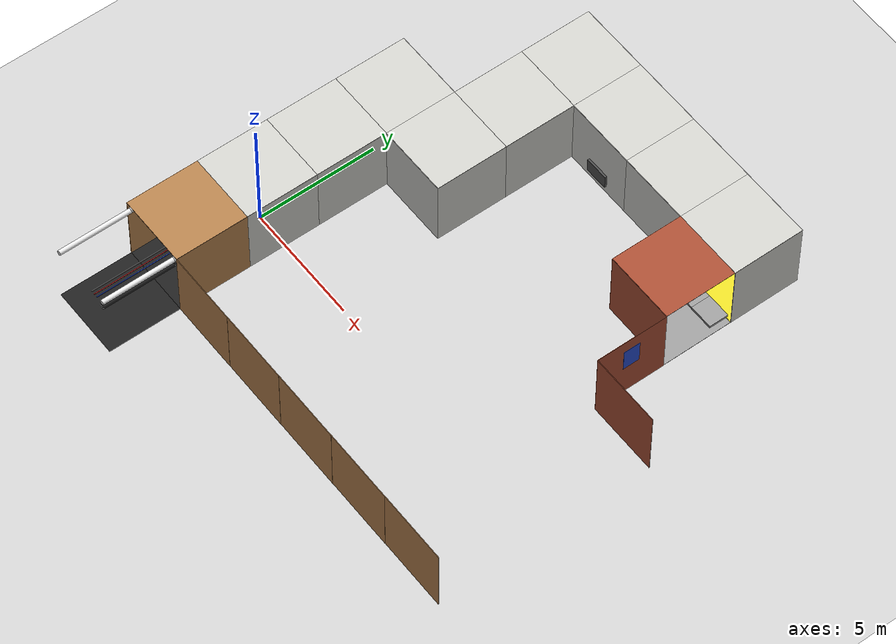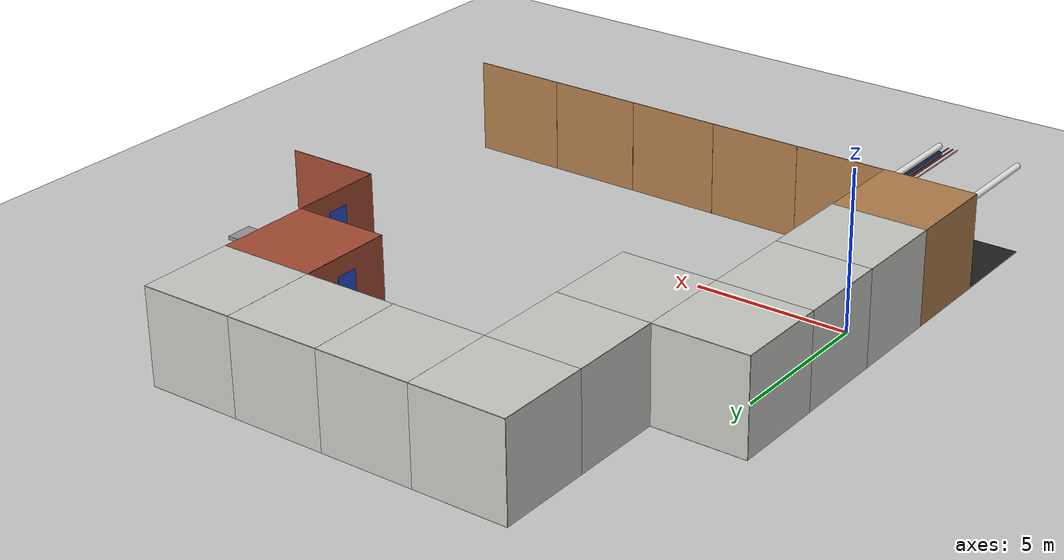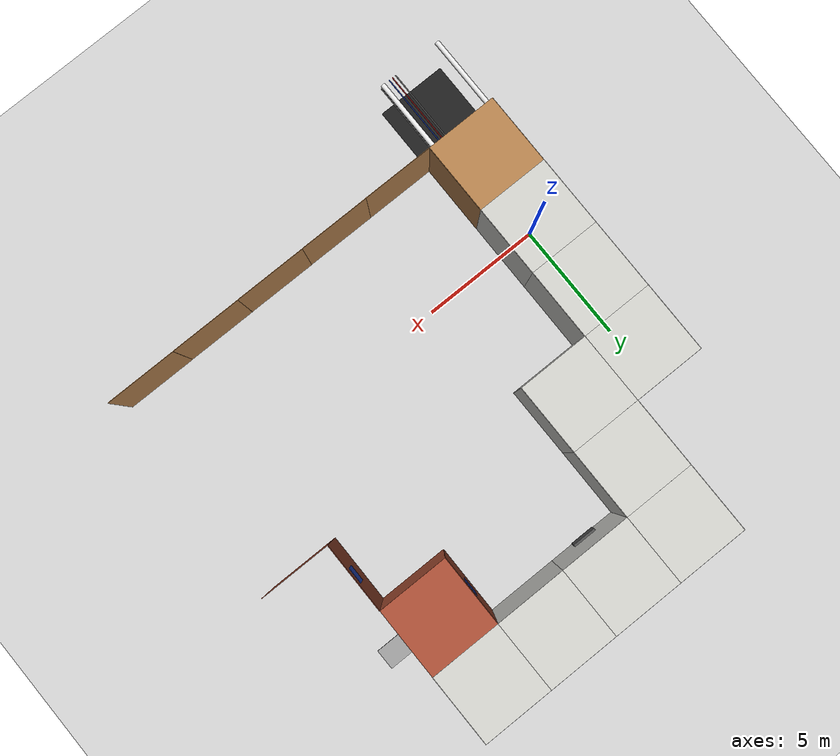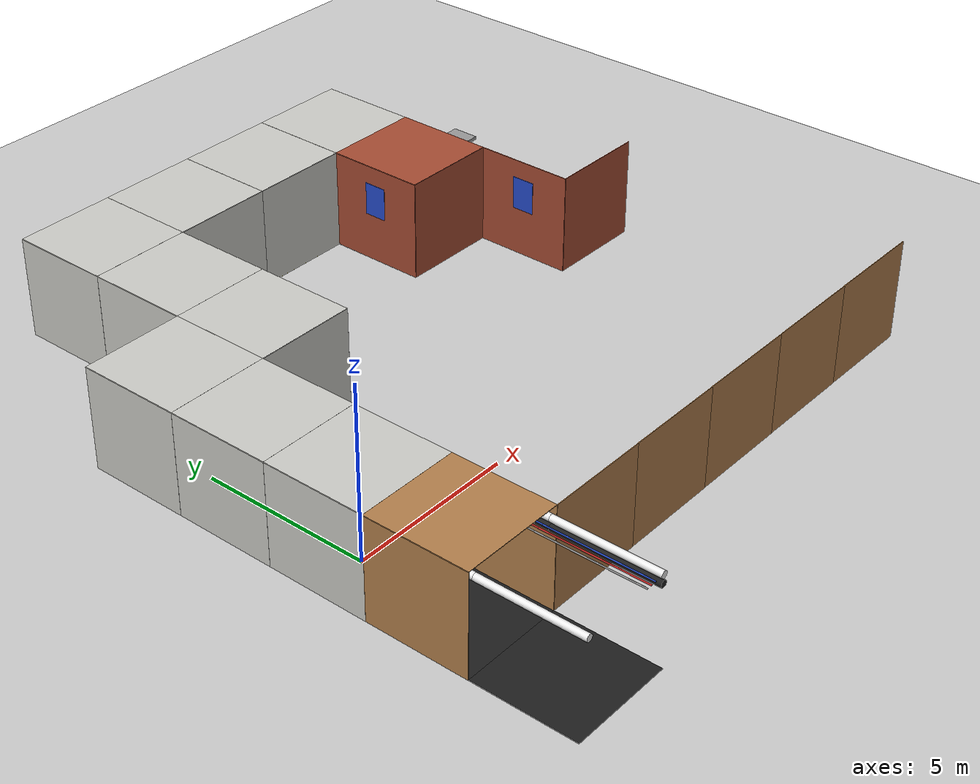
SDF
<sdf version="1.6">
 <world name="default">
  <model name="ground_plane">
   <static>1</static>
   <link name="link">
    <collision name="collision">
     <geometry><plane><normal>0 0 1</normal><size>200 200</size></plane></geometry>
     <surface><friction><ode><mu>100</mu><mu2>50</mu2></ode></friction></surface>
    </collision>
    <visual name="visual">
     <cast_shadows>0</cast_shadows>
     <geometry><plane><normal>0 0 1</normal><size>200 200</size></plane></geometry>
     <material>
      <script><uri>file://media/materials/scripts/gazebo.material</uri><name>Gazebo/Grey</name></script>
     </material>
    </visual>
   </link>
  </model>
  <model name="wall_back_0_0_0_0">
   <static>1</static>
   <pose>0.0 -1.5 1.5 0.0 0.0 0.0</pose>
   <link name="link">
    <collision name="collision"><geometry><box><size>3 0.02 3</size></box></geometry></collision>
    <visual name="visual">
     <material>
      <script><name>Gazebo/CeilingTiled</name><uri>file://media/materials/scripts/gazebo.material</uri></script>
     </material>
     <geometry><box><size>3 0.02 3</size></box></geometry>
    </visual>
   </link>
  </model>
  <model name="wall_right_0_0_0_0">
   <static>1</static>
   <pose>1.5 0.0 1.5 0.0 0.0 1.57</pose>
   <link name="link">
    <collision name="collision"><geometry><box><size>3 0.02 3</size></box></geometry></collision>
    <visual name="visual">
     <material>
      <script><name>Gazebo/CeilingTiled</name><uri>file://media/materials/scripts/gazebo.material</uri></script>
      <ambient>1 1 1 1</ambient>
     </material>
     <geometry><box><size>3 0.02 3</size></box></geometry>
    </visual>
   </link>
  </model>
  <model name="wall_left_0_0_0_0">
   <static>1</static>
   <pose>-1.5 0.0 1.5 0.0 0.0 1.57</pose>
   <link name="link">
    <collision name="collision"><geometry><box><size>3 0.02 3</size></box></geometry></collision>
    <visual name="visual">
     <material>
      <script><name>Gazebo/CeilingTiled</name><uri>file://media/materials/scripts/gazebo.material</uri></script>
      <ambient>1 1 1 1</ambient>
     </material>
     <geometry><box><size>3 0.02 3</size></box></geometry>
    </visual>
   </link>
  </model>
  <model name="wall_top_0_0_0_0">
   <static>1</static>
   <pose>0.0 0.0 3.0 1.57 0.0 0.0</pose>
   <link name="link">
    <collision name="collision"><geometry><box><size>3 0.02 3</size></box></geometry></collision>
    <visual name="visual">
     <material>
      <script><name>Gazebo/CeilingTiled</name><uri>file://media/materials/scripts/gazebo.material</uri></script>
      <ambient>1 1 1 1</ambient>
     </material>
     <geometry><box><size>3 0.02 3</size></box></geometry>
    </visual>
   </link>
  </model>
  <model name="wall_bottom_0_0_0_0">
   <static>1</static>
   <link name="link">
    <collision name="collision"><geometry><box><size>3 3 0.02</size></box></geometry></collision>
    <visual name="visual">
     <material>
      <script><name>Gazebo/Yellow</name><uri>file://media/materials/scripts/gazebo.material</uri></script>
     </material>
     <geometry><box><size>3 3 0.02</size></box></geometry>
    </visual>
   </link>
  </model>
  <model name="wall_right_0_1_0_1">
   <static>1</static>
   <pose>1.5 3.0 1.5 0.0 0.0 1.57</pose>
   <link name="link">
    <collision name="collision"><geometry><box><size>3 0.02 3</size></box></geometry></collision>
    <visual name="visual">
     <material>
      <script><name>Gazebo/CeilingTiled</name><uri>file://media/materials/scripts/gazebo.material</uri></script>
      <ambient>1 1 1 1</ambient>
     </material>
     <geometry><box><size>3 0.02 3</size></box></geometry>
    </visual>
   </link>
  </model>
  <model name="wall_left_0_1_0_1">
   <static>1</static>
   <pose>-1.5 3.0 1.5 0.0 0.0 1.57</pose>
   <link name="link">
    <collision name="collision"><geometry><box><size>3 0.02 3</size></box></geometry></collision>
    <visual name="visual">
     <material>
      <script><name>Gazebo/CeilingTiled</name><uri>file://media/materials/scripts/gazebo.material</uri></script>
      <ambient>1 1 1 1</ambient>
     </material>
     <geometry><box><size>3 0.02 3</size></box></geometry>
    </visual>
   </link>
  </model>
  <model name="wall_top_0_1_0_1">
   <static>1</static>
   <pose>0.0 3.0 3.0 1.57 0.0 0.0</pose>
   <link name="link">
    <collision name="collision"><geometry><box><size>3 0.02 3</size></box></geometry></collision>
    <visual name="visual">
     <material>
      <script><name>Gazebo/CeilingTiled</name><uri>file://media/materials/scripts/gazebo.material</uri></script>
      <ambient>1 1 1 1</ambient>
     </material>
     <geometry><box><size>3 0.02 3</size></box></geometry>
    </visual>
   </link>
  </model>
  <model name="wall_bottom_0_1_0_1">
   <static>1</static>
   <pose>0.0 3.0 0.0 0.0 0.0 0.0</pose>
   <link name="link">
    <collision name="collision"><geometry><box><size>3 3 0.02</size></box></geometry></collision>
    <visual name="visual">
     <material>
      <script><name>Gazebo/Yellow</name><uri>file://media/materials/scripts/gazebo.material</uri></script>
     </material>
     <geometry><box><size>3 3 0.02</size></box></geometry>
    </visual>
   </link>
  </model>
  <model name="wall_front_0_2_0_2">
   <static>1</static>
   <pose>0.0 7.5 1.5 0.0 0.0 0.0</pose>
   <link name="link">
    <collision name="collision"><geometry><box><size>3 0.02 3</size></box></geometry></collision>
    <visual name="visual">
     <material>
      <script><name>Gazebo/CeilingTiled</name><uri>file://media/materials/scripts/gazebo.material</uri></script>
      <ambient>1 1 1 1</ambient>
     </material>
     <geometry><box><size>3 0.02 3</size></box></geometry>
    </visual>
   </link>
  </model>
  <model name="wall_left_0_2_0_2">
   <static>1</static>
   <pose>-1.5 6.0 1.5 0.0 0.0 1.57</pose>
   <link name="link">
    <collision name="collision"><geometry><box><size>3 0.02 3</size></box></geometry></collision>
    <visual name="visual">
     <material>
      <script><name>Gazebo/CeilingTiled</name><uri>file://media/materials/scripts/gazebo.material</uri></script>
      <ambient>1 1 1 1</ambient>
     </material>
     <geometry><box><size>3 0.02 3</size></box></geometry>
    </visual>
   </link>
  </model>
  <model name="wall_top_0_2_0_2">
   <static>1</static>
   <pose>0.0 6.0 3.0 1.57 0.0 0.0</pose>
   <link name="link">
    <collision name="collision"><geometry><box><size>3 0.02 3</size></box></geometry></collision>
    <visual name="visual">
     <material>
      <script><name>Gazebo/CeilingTiled</name><uri>file://media/materials/scripts/gazebo.material</uri></script>
      <ambient>1 1 1 1</ambient>
     </material>
     <geometry><box><size>3 0.02 3</size></box></geometry>
    </visual>
   </link>
  </model>
  <model name="wall_bottom_0_2_0_2">
   <static>1</static>
   <pose>0.0 6.0 0.0 0.0 0.0 0.0</pose>
   <link name="link">
    <collision name="collision"><geometry><box><size>3 3 0.02</size></box></geometry></collision>
    <visual name="visual">
     <material>
      <script><name>Gazebo/Yellow</name><uri>file://media/materials/scripts/gazebo.material</uri></script>
     </material>
     <geometry><box><size>3 3 0.02</size></box></geometry>
    </visual>
   </link>
  </model>
  <model name="wall_front_1_2_0_3">
   <static>1</static>
   <pose>4.5 6.0 1.5 0.0 0.0 -1.57</pose>
   <link name="link">
    <collision name="collision"><geometry><box><size>3 0.02 3</size></box></geometry></collision>
    <visual name="visual">
     <material>
      <script><name>Gazebo/CeilingTiled</name><uri>file://media/materials/scripts/gazebo.material</uri></script>
      <ambient>1 1 1 1</ambient>
     </material>
     <geometry><box><size>3 0.02 3</size></box></geometry>
    </visual>
   </link>
  </model>
  <model name="wall_right_1_2_0_3">
   <static>1</static>
   <pose>3.0 4.5 1.5 0.0 0.0 0.0</pose>
   <link name="link">
    <collision name="collision"><geometry><box><size>3 0.02 3</size></box></geometry></collision>
    <visual name="visual">
     <material>
      <script><name>Gazebo/CeilingTiled</name><uri>file://media/materials/scripts/gazebo.material</uri></script>
      <ambient>1 1 1 1</ambient>
     </material>
     <geometry><box><size>3 0.02 3</size></box></geometry>
    </visual>
   </link>
  </model>
  <model name="wall_top_1_2_0_3">
   <static>1</static>
   <pose>3.0 6.0 3.0 1.57 0.0 -1.57</pose>
   <link name="link">
    <collision name="collision"><geometry><box><size>3 0.02 3</size></box></geometry></collision>
    <visual name="visual">
     <material>
      <script><name>Gazebo/CeilingTiled</name><uri>file://media/materials/scripts/gazebo.material</uri></script>
      <ambient>1 1 1 1</ambient>
     </material>
     <geometry><box><size>3 0.02 3</size></box></geometry>
    </visual>
   </link>
  </model>
  <model name="wall_bottom_1_2_0_3">
   <static>1</static>
   <pose>3.0 6.0 0.0 0.0 0.0 -1.57</pose>
   <link name="link">
    <collision name="collision"><geometry><box><size>3 3 0.02</size></box></geometry></collision>
    <visual name="visual">
     <material>
      <script><name>Gazebo/Yellow</name><uri>file://media/materials/scripts/gazebo.material</uri></script>
     </material>
     <geometry><box><size>3 3 0.02</size></box></geometry>
    </visual>
   </link>
  </model>
  <model name="wall_right_1_3_0_1">
   <static>1</static>
   <pose>4.5 9.0 1.5 0.0 0.0 1.57</pose>
   <link name="link">
    <collision name="collision"><geometry><box><size>3 0.02 3</size></box></geometry></collision>
    <visual name="visual">
     <material>
      <script><name>Gazebo/CeilingTiled</name><uri>file://media/materials/scripts/gazebo.material</uri></script>
      <ambient>1 1 1 1</ambient>
     </material>
     <geometry><box><size>3 0.02 3</size></box></geometry>
    </visual>
   </link>
  </model>
  <model name="wall_left_1_3_0_1">
   <static>1</static>
   <pose>1.5 9.0 1.5 0.0 0.0 1.57</pose>
   <link name="link">
    <collision name="collision"><geometry><box><size>3 0.02 3</size></box></geometry></collision>
    <visual name="visual">
     <material>
      <script><name>Gazebo/CeilingTiled</name><uri>file://media/materials/scripts/gazebo.material</uri></script>
      <ambient>1 1 1 1</ambient>
     </material>
     <geometry><box><size>3 0.02 3</size></box></geometry>
    </visual>
   </link>
  </model>
  <model name="wall_top_1_3_0_1">
   <static>1</static>
   <pose>3.0 9.0 3.0 1.57 0.0 0.0</pose>
   <link name="link">
    <collision name="collision"><geometry><box><size>3 0.02 3</size></box></geometry></collision>
    <visual name="visual">
     <material>
      <script><name>Gazebo/CeilingTiled</name><uri>file://media/materials/scripts/gazebo.material</uri></script>
      <ambient>1 1 1 1</ambient>
     </material>
     <geometry><box><size>3 0.02 3</size></box></geometry>
    </visual>
   </link>
  </model>
  <model name="wall_bottom_1_3_0_1">
   <static>1</static>
   <pose>3.0 9.0 0.0 0.0 0.0 0.0</pose>
   <link name="link">
    <collision name="collision"><geometry><box><size>3 3 0.02</size></box></geometry></collision>
    <visual name="visual">
     <material>
      <script><name>Gazebo/Yellow</name><uri>file://media/materials/scripts/gazebo.material</uri></script>
     </material>
     <geometry><box><size>3 3 0.02</size></box></geometry>
    </visual>
   </link>
  </model>
  <model name="wall_front_1_4_0_2">
   <static>1</static>
   <pose>3.0 13.5 1.5 0.0 0.0 0.0</pose>
   <link name="link">
    <collision name="collision"><geometry><box><size>3 0.02 3</size></box></geometry></collision>
    <visual name="visual">
     <material>
      <script><name>Gazebo/CeilingTiled</name><uri>file://media/materials/scripts/gazebo.material</uri></script>
      <ambient>1 1 1 1</ambient>
     </material>
     <geometry><box><size>3 0.02 3</size></box></geometry>
    </visual>
   </link>
  </model>
  <model name="wall_left_1_4_0_2">
   <static>1</static>
   <pose>1.5 12.0 1.5 0.0 0.0 1.57</pose>
   <link name="link">
    <collision name="collision"><geometry><box><size>3 0.02 3</size></box></geometry></collision>
    <visual name="visual">
     <material>
      <script><name>Gazebo/CeilingTiled</name><uri>file://media/materials/scripts/gazebo.material</uri></script>
      <ambient>1 1 1 1</ambient>
     </material>
     <geometry><box><size>3 0.02 3</size></box></geometry>
    </visual>
   </link>
  </model>
  <model name="wall_top_1_4_0_2">
   <static>1</static>
   <pose>3.0 12.0 3.0 1.57 0.0 0.0</pose>
   <link name="link">
    <collision name="collision"><geometry><box><size>3 0.02 3</size></box></geometry></collision>
    <visual name="visual">
     <material>
      <script><name>Gazebo/CeilingTiled</name><uri>file://media/materials/scripts/gazebo.material</uri></script>
      <ambient>1 1 1 1</ambient>
     </material>
     <geometry><box><size>3 0.02 3</size></box></geometry>
    </visual>
   </link>
  </model>
  <model name="wall_bottom_1_4_0_2">
   <static>1</static>
   <pose>3.0 12.0 0.0 0.0 0.0 0.0</pose>
   <link name="link">
    <collision name="collision"><geometry><box><size>3 3 0.02</size></box></geometry></collision>
    <visual name="visual">
     <material>
      <script><name>Gazebo/Yellow</name><uri>file://media/materials/scripts/gazebo.material</uri></script>
     </material>
     <geometry><box><size>3 3 0.02</size></box></geometry>
    </visual>
   </link>
  </model>
  <model name="wall_right_2_4_0_1">
   <static>1</static>
   <pose>6.0 10.5 1.5 0.0 0.0 0.0</pose>
   <link name="link">
    <collision name="collision"><geometry><box><size>3 0.02 3</size></box></geometry></collision>
    <visual name="visual">
     <material>
      <script><name>Gazebo/CeilingTiled</name><uri>file://media/materials/scripts/gazebo.material</uri></script>
      <ambient>1 1 1 1</ambient>
     </material>
     <geometry><box><size>3 0.02 3</size></box></geometry>
    </visual>
   </link>
  </model>
  <model name="wall_left_2_4_0_1">
   <static>1</static>
   <pose>6.0 13.5 1.5 0.0 0.0 0.0</pose>
   <link name="link">
    <collision name="collision"><geometry><box><size>3 0.02 3</size></box></geometry></collision>
    <visual name="visual">
     <material>
      <script><name>Gazebo/CeilingTiled</name><uri>file://media/materials/scripts/gazebo.material</uri></script>
      <ambient>1 1 1 1</ambient>
     </material>
     <geometry><box><size>3 0.02 3</size></box></geometry>
    </visual>
   </link>
  </model>
  <model name="wall_top_2_4_0_1">
   <static>1</static>
   <pose>6.0 12.0 3.0 1.57 0.0 -1.57</pose>
   <link name="link">
    <collision name="collision"><geometry><box><size>3 0.02 3</size></box></geometry></collision>
    <visual name="visual">
     <material>
      <script><name>Gazebo/CeilingTiled</name><uri>file://media/materials/scripts/gazebo.material</uri></script>
      <ambient>1 1 1 1</ambient>
     </material>
     <geometry><box><size>3 0.02 3</size></box></geometry>
    </visual>
   </link>
  </model>
  <model name="wall_bottom_2_4_0_1">
   <static>1</static>
   <pose>6.0 12.0 0.0 0.0 0.0 -1.57</pose>
   <link name="link">
    <collision name="collision"><geometry><box><size>3 3 0.02</size></box></geometry></collision>
    <visual name="visual">
     <material>
      <script><name>Gazebo/Yellow</name><uri>file://media/materials/scripts/gazebo.material</uri></script>
     </material>
     <geometry><box><size>3 3 0.02</size></box></geometry>
    </visual>
   </link>
  </model>
  <model name="panel_2_4_0_1">
   <static>1</static>
   <pose>6.0 10.5 0.66 0.0 0.0 -1.57</pose>
   <link name="link">
    <collision name="collision"><geometry><box><size>0.2 1 0.6</size></box></geometry></collision>
    <visual name="visual">
     <material>
      <script><name>Gazebo/DarkGrey</name><uri>file://media/materials/scripts/gazebo.material</uri></script>
     </material>
     <geometry><box><size>0.2 1 0.6</size></box></geometry>
    </visual>
   </link>
  </model>
  <model name="wall_right_3_4_0_1">
   <static>1</static>
   <pose>9.0 10.5 1.5 0.0 0.0 0.0</pose>
   <link name="link">
    <collision name="collision"><geometry><box><size>3 0.02 3</size></box></geometry></collision>
    <visual name="visual">
     <material>
      <script><name>Gazebo/CeilingTiled</name><uri>file://media/materials/scripts/gazebo.material</uri></script>
      <ambient>1 1 1 1</ambient>
     </material>
     <geometry><box><size>3 0.02 3</size></box></geometry>
    </visual>
   </link>
  </model>
  <model name="wall_left_3_4_0_1">
   <static>1</static>
   <pose>9.0 13.5 1.5 0.0 0.0 0.0</pose>
   <link name="link">
    <collision name="collision"><geometry><box><size>3 0.02 3</size></box></geometry></collision>
    <visual name="visual">
     <material>
      <script><name>Gazebo/CeilingTiled</name><uri>file://media/materials/scripts/gazebo.material</uri></script>
      <ambient>1 1 1 1</ambient>
     </material>
     <geometry><box><size>3 0.02 3</size></box></geometry>
    </visual>
   </link>
  </model>
  <model name="wall_top_3_4_0_1">
   <static>1</static>
   <pose>9.0 12.0 3.0 1.57 0.0 -1.57</pose>
   <link name="link">
    <collision name="collision"><geometry><box><size>3 0.02 3</size></box></geometry></collision>
    <visual name="visual">
     <material>
      <script><name>Gazebo/CeilingTiled</name><uri>file://media/materials/scripts/gazebo.material</uri></script>
      <ambient>1 1 1 1</ambient>
     </material>
     <geometry><box><size>3 0.02 3</size></box></geometry>
    </visual>
   </link>
  </model>
  <model name="wall_bottom_3_4_0_1">
   <static>1</static>
   <pose>9.0 12.0 0.0 0.0 0.0 -1.57</pose>
   <link name="link">
    <collision name="collision"><geometry><box><size>3 3 0.02</size></box></geometry></collision>
    <visual name="visual">
     <material>
      <script><name>Gazebo/Yellow</name><uri>file://media/materials/scripts/gazebo.material</uri></script>
     </material>
     <geometry><box><size>3 3 0.02</size></box></geometry>
    </visual>
   </link>
  </model>
  <model name="wall_front_4_4_0_2">
   <static>1</static>
   <pose>13.5 12.0 1.5 0.0 0.0 -1.57</pose>
   <link name="link">
    <collision name="collision"><geometry><box><size>3 0.02 3</size></box></geometry></collision>
    <visual name="visual">
     <material>
      <script><name>Gazebo/CeilingTiled</name><uri>file://media/materials/scripts/gazebo.material</uri></script>
      <ambient>1 1 1 1</ambient>
     </material>
     <geometry><box><size>3 0.02 3</size></box></geometry>
    </visual>
   </link>
  </model>
  <model name="wall_left_4_4_0_2">
   <static>1</static>
   <pose>12.0 13.5 1.5 0.0 0.0 0.0</pose>
   <link name="link">
    <collision name="collision"><geometry><box><size>3 0.02 3</size></box></geometry></collision>
    <visual name="visual">
     <material>
      <script><name>Gazebo/CeilingTiled</name><uri>file://media/materials/scripts/gazebo.material</uri></script>
      <ambient>1 1 1 1</ambient>
     </material>
     <geometry><box><size>3 0.02 3</size></box></geometry>
    </visual>
   </link>
  </model>
  <model name="wall_top_4_4_0_2">
   <static>1</static>
   <pose>12.0 12.0 3.0 1.57 0.0 -1.57</pose>
   <link name="link">
    <collision name="collision"><geometry><box><size>3 0.02 3</size></box></geometry></collision>
    <visual name="visual">
     <material>
      <script><name>Gazebo/CeilingTiled</name><uri>file://media/materials/scripts/gazebo.material</uri></script>
      <ambient>1 1 1 1</ambient>
     </material>
     <geometry><box><size>3 0.02 3</size></box></geometry>
    </visual>
   </link>
  </model>
  <model name="wall_bottom_4_4_0_2">
   <static>1</static>
   <pose>12.0 12.0 0.0 0.0 0.0 -1.57</pose>
   <link name="link">
    <collision name="collision"><geometry><box><size>3 3 0.02</size></box></geometry></collision>
    <visual name="visual">
     <material>
      <script><name>Gazebo/Yellow</name><uri>file://media/materials/scripts/gazebo.material</uri></script>
     </material>
     <geometry><box><size>3 3 0.02</size></box></geometry>
    </visual>
   </link>
  </model>
  <model name="wall_front_4_3_0_3">
   <static>1</static>
   <pose>12.0 7.5 1.5 0.0 0.0 3.14</pose>
   <link name="link">
    <collision name="collision"><geometry><box><size>3 0.02 3</size></box></geometry></collision>
    <visual name="visual">
     <material>
      <script><name>Gazebo/Bricks</name><uri>file://media/materials/scripts/gazebo.material</uri></script>
     </material>
     <geometry><box><size>3 0.02 3</size></box></geometry>
    </visual>
   </link>
  </model>
  <model name="wall_right_4_3_0_3">
   <static>1</static>
   <pose>10.5 9.0 1.5 0.0 0.0 4.71</pose>
   <link name="link">
    <collision name="collision"><geometry><box><size>3 0.02 3</size></box></geometry></collision>
    <visual name="visual">
     <material>
      <script><name>Gazebo/Bricks</name><uri>file://media/materials/scripts/gazebo.material</uri></script>
     </material>
     <geometry><box><size>3 0.02 3</size></box></geometry>
    </visual>
   </link>
  </model>
  <model name="wall_top_4_3_0_3">
   <static>1</static>
   <pose>12.0 9.0 3.0 1.57 0.0 3.14</pose>
   <link name="link">
    <collision name="collision"><geometry><box><size>3 0.02 3</size></box></geometry></collision>
    <visual name="visual">
     <material>
      <script><name>Gazebo/Bricks</name><uri>file://media/materials/scripts/gazebo.material</uri></script>
     </material>
     <geometry><box><size>3 0.02 3</size></box></geometry>
    </visual>
   </link>
  </model>
  <model name="ceiling_1_4_3_0_3">
   <pose>12.0 10.0 2.55 0.0 0.0 3.14</pose>
   <link name="link_1">
    <visual name="visual">
     <geometry><box><size>0.8 1 0.1</size></box></geometry>
     <material>
      <script><uri>file://media/materials/scripts/gazebo.material</uri><name>Gazebo/Grey</name></script>
     </material>
    </visual>
    <collision name="collision"><geometry><box><size>0.8 1 0.1</size></box></geometry></collision>
   </link>
   <static>1</static>
  </model>
  <model name="ceiling_1_4_3_1_3">
   <pose>13.0 9.0 2.55 0.0 0.0 4.71</pose>
   <link name="link_1">
    <visual name="visual">
     <geometry><box><size>0.8 1 0.1</size></box></geometry>
     <material>
      <script><uri>file://media/materials/scripts/gazebo.material</uri><name>Gazebo/Grey</name></script>
     </material>
    </visual>
    <collision name="collision"><geometry><box><size>0.8 1 0.1</size></box></geometry></collision>
   </link>
   <static>1</static>
  </model>
  <model name="wall_bottom_4_3_0_3">
   <static>1</static>
   <pose>12.0 9.0 0.0 0.0 0.0 3.14</pose>
   <link name="link">
    <collision name="collision"><geometry><box><size>3 3 0.02</size></box></geometry></collision>
    <visual name="visual">
     <material>
      <script><name>Gazebo/Grey</name><uri>file://media/materials/scripts/gazebo.material</uri></script>
     </material>
     <geometry><box><size>3 3 0.02</size></box></geometry>
    </visual>
   </link>
  </model>
  <model name="panel_4_3_0_3">
   <static>1</static>
   <pose>10.5 9.0 1.95 0.0 0.0 3.14</pose>
   <link name="link">
    <collision name="collision"><geometry><box><size>0.04 0.7 1</size></box></geometry></collision>
    <visual name="visual">
     <material>
      <script><name>Gazebo/Blue</name><uri>file://media/materials/scripts/gazebo.material</uri></script>
     </material>
     <geometry><box><size>0.04 0.7 1</size></box></geometry>
    </visual>
   </link>
  </model>
  <model name="ceiling_1_5_3_0_2">
   <pose>14.0 9.0 2.55 0.0 0.0 -1.57</pose>
   <link name="link_1">
    <visual name="visual">
     <geometry><box><size>0.8 1 0.1</size></box></geometry>
     <material>
      <script><uri>file://media/materials/scripts/gazebo.material</uri><name>Gazebo/Grey</name></script>
     </material>
    </visual>
    <collision name="collision"><geometry><box><size>0.8 1 0.1</size></box></geometry></collision>
   </link>
   <static>1</static>
  </model>
  <model name="wall_front_5_2_0_3">
   <static>1</static>
   <pose>15.0 4.5 1.5 0.0 0.0 3.14</pose>
   <link name="link">
    <collision name="collision"><geometry><box><size>3 0.02 3</size></box></geometry></collision>
    <visual name="visual">
     <material>
      <script><name>Gazebo/Bricks</name><uri>file://media/materials/scripts/gazebo.material</uri></script>
     </material>
     <geometry><box><size>3 0.02 3</size></box></geometry>
    </visual>
   </link>
  </model>
  <model name="wall_right_5_2_0_3">
   <static>1</static>
   <pose>13.5 6.0 1.5 0.0 0.0 4.71</pose>
   <link name="link">
    <collision name="collision"><geometry><box><size>3 0.02 3</size></box></geometry></collision>
    <visual name="visual">
     <material>
      <script><name>Gazebo/Bricks</name><uri>file://media/materials/scripts/gazebo.material</uri></script>
     </material>
     <geometry><box><size>3 0.02 3</size></box></geometry>
    </visual>
   </link>
  </model>
  <model name="panel_5_2_0_3">
   <static>1</static>
   <pose>13.5 6.0 1.95 0.0 0.0 3.14</pose>
   <link name="link">
    <collision name="collision"><geometry><box><size>0.04 0.7 1</size></box></geometry></collision>
    <visual name="visual">
     <material>
      <script><name>Gazebo/Blue</name><uri>file://media/materials/scripts/gazebo.material</uri></script>
     </material>
     <geometry><box><size>0.04 0.7 1</size></box></geometry>
    </visual>
   </link>
  </model>
  <model name="wall_right_5_-2_0_1">
   <static>1</static>
   <pose>15.0 -4.5 1.5 0.0 0.0 3.14</pose>
   <link name="link">
    <collision name="collision"><geometry><box><size>3 0.02 3</size></box></geometry></collision>
    <visual name="visual">
     <material>
      <script><name>Gazebo/Wood</name><uri>file://media/materials/scripts/gazebo.material</uri></script>
     </material>
     <geometry><box><size>3 0.02 3</size></box></geometry>
    </visual>
   </link>
  </model>
  <model name="wall_right_4_-2_0_1">
   <static>1</static>
   <pose>12.0 -4.5 1.5 0.0 0.0 3.14</pose>
   <link name="link">
    <collision name="collision"><geometry><box><size>3 0.02 3</size></box></geometry></collision>
    <visual name="visual">
     <material>
      <script><name>Gazebo/Wood</name><uri>file://media/materials/scripts/gazebo.material</uri></script>
     </material>
     <geometry><box><size>3 0.02 3</size></box></geometry>
    </visual>
   </link>
  </model>
  <model name="wall_right_3_-2_0_1">
   <static>1</static>
   <pose>9.0 -4.5 1.5 0.0 0.0 3.14</pose>
   <link name="link">
    <collision name="collision"><geometry><box><size>3 0.02 3</size></box></geometry></collision>
    <visual name="visual">
     <material>
      <script><name>Gazebo/Wood</name><uri>file://media/materials/scripts/gazebo.material</uri></script>
     </material>
     <geometry><box><size>3 0.02 3</size></box></geometry>
    </visual>
   </link>
  </model>
  <model name="wall_right_2_-2_0_1">
   <static>1</static>
   <pose>6.0 -4.5 1.5 0.0 0.0 3.14</pose>
   <link name="link">
    <collision name="collision"><geometry><box><size>3 0.02 3</size></box></geometry></collision>
    <visual name="visual">
     <material>
      <script><name>Gazebo/Wood</name><uri>file://media/materials/scripts/gazebo.material</uri></script>
     </material>
     <geometry><box><size>3 0.02 3</size></box></geometry>
    </visual>
   </link>
  </model>
  <model name="wall_right_1_-2_0_3">
   <static>1</static>
   <pose>3.0 -4.5 1.5 0.0 0.0 3.14</pose>
   <link name="link">
    <collision name="collision"><geometry><box><size>3 0.02 3</size></box></geometry></collision>
    <visual name="visual">
     <material>
      <script><name>Gazebo/Wood</name><uri>file://media/materials/scripts/gazebo.material</uri></script>
     </material>
     <geometry><box><size>3 0.02 3</size></box></geometry>
    </visual>
   </link>
  </model>
  <model name="white_pipe_left_0_-2_0_1">
   <static>1</static>
   <pose>0.0 -6.0 2.76 0.0 0.0 0.0</pose>
   <link name="link_0">
    <visual name="visual">
     <pose>-1.3 0 0 1.57 0 0</pose>
     <geometry><cylinder><radius>0.1</radius><length>3</length></cylinder></geometry>
     <material>
      <script><uri>file://media/materials/scripts/gazebo.material</uri><name>Gazebo/White</name></script>
     </material>
    </visual>
    <collision name="collision">
     <pose>-1.3 0 0 1.57 0 0</pose>
     <geometry><cylinder><radius>0.1</radius><length>3</length></cylinder></geometry>
    </collision>
   </link>
  </model>
  <model name="white_pipe_right_0_-2_0_1">
   <static>1</static>
   <pose>0.0 -6.0 2.76 0.0 0.0 0.0</pose>
   <link name="link_0">
    <visual name="visual">
     <pose>1.3 0 0 1.57 0 0</pose>
     <geometry><cylinder><radius>0.1</radius><length>3</length></cylinder></geometry>
     <material>
      <script><uri>file://media/materials/scripts/gazebo.material</uri><name>Gazebo/White</name></script>
     </material>
    </visual>
    <collision name="collision">
     <pose>1.3 0 0 1.57 0 0</pose>
     <geometry><cylinder><radius>0.1</radius><length>3</length></cylinder></geometry>
    </collision>
   </link>
  </model>
  <model name="black_pipe_right_0_-2_0_1">
   <static>1</static>
   <pose>0.0 -6.0 2.76 0.0 0.0 0.0</pose>
   <link name="link_0">
    <visual name="visual">
     <pose>1.3 0 -0.25 1.57 0 0</pose>
     <geometry><cylinder><radius>0.1</radius><length>3</length></cylinder></geometry>
     <material>
      <script><uri>file://media/materials/scripts/gazebo.material</uri><name>Gazebo/Black</name></script>
     </material>
    </visual>
    <collision name="collision">
     <pose>1.3 0 -0.25 1.57 0 0</pose>
     <geometry><cylinder><radius>0.1</radius><length>3</length></cylinder></geometry>
    </collision>
   </link>
  </model>
  <model name="grey_pipe_right_0_-2_0_1">
   <static>1</static>
   <pose>0.0 -6.0 2.76 0.0 0.0 0.0</pose>
   <link name="link_0">
    <visual name="visual">
     <pose>0.7 0 0 1.57 0 0</pose>
     <geometry><cylinder><radius>0.02</radius><length>3</length></cylinder></geometry>
     <material>
      <script><uri>file://media/materials/scripts/gazebo.material</uri><name>Gazebo/Grey</name></script>
     </material>
    </visual>
    <collision name="collision">
     <pose>0.7 0 0 1.57 0 0</pose>
     <geometry><cylinder><radius>0.02</radius><length>3</length></cylinder></geometry>
    </collision>
   </link>
  </model>
  <model name="red_pipe_right_0_-2_0_1">
   <static>1</static>
   <pose>0.0 -6.0 2.76 0.0 0.0 0.0</pose>
   <link name="link_0">
    <visual name="visual">
     <pose>0.85 0 0 1.57 0 0</pose>
     <geometry><cylinder><radius>0.02</radius><length>3</length></cylinder></geometry>
     <material>
      <script><uri>file://media/materials/scripts/gazebo.material</uri><name>Gazebo/Red</name></script>
     </material>
    </visual>
    <collision name="collision">
     <pose>0.85 0 0 1.57 0 0</pose>
     <geometry><cylinder><radius>0.02</radius><length>3</length></cylinder></geometry>
    </collision>
   </link>
  </model>
  <model name="blue_pipe_right_0_-2_0_1">
   <static>1</static>
   <pose>0.0 -6.0 2.76 0.0 0.0 0.0</pose>
   <link name="link_0">
    <visual name="visual">
     <pose>1 0 0 1.57 0 0</pose>
     <geometry><cylinder><radius>0.02</radius><length>3</length></cylinder></geometry>
     <material>
      <script><uri>file://media/materials/scripts/gazebo.material</uri><name>Gazebo/Blue</name></script>
     </material>
    </visual>
    <collision name="collision">
     <pose>1 0 0 1.57 0 0</pose>
     <geometry><cylinder><radius>0.02</radius><length>3</length></cylinder></geometry>
    </collision>
   </link>
  </model>
  <model name="wall_bottom_0_-2_0_1">
   <static>1</static>
   <pose>0.0 -6.0 0.0 0.0 0.0 0.0</pose>
   <link name="link">
    <collision name="collision"><geometry><box><size>3 3 0.02</size></box></geometry></collision>
    <visual name="visual">
     <material>
      <script><name>Gazebo/Black</name><uri>file://media/materials/scripts/gazebo.material</uri></script>
     </material>
     <geometry><box><size>3 3 0.02</size></box></geometry>
    </visual>
   </link>
  </model>
  <model name="wall_right_0_-1_0_1">
   <static>1</static>
   <pose>1.5 -3.0 1.5 0.0 0.0 1.57</pose>
   <link name="link">
    <collision name="collision"><geometry><box><size>3 0.02 3</size></box></geometry></collision>
    <visual name="visual">
     <material>
      <script><name>Gazebo/Wood</name><uri>file://media/materials/scripts/gazebo.material</uri></script>
     </material>
     <geometry><box><size>3 0.02 3</size></box></geometry>
    </visual>
   </link>
  </model>
  <model name="wall_left_0_-1_0_1">
   <static>1</static>
   <pose>-1.5 -3.0 1.5 0.0 0.0 1.57</pose>
   <link name="link">
    <collision name="collision"><geometry><box><size>3 0.02 3</size></box></geometry></collision>
    <visual name="visual">
     <material>
      <script><name>Gazebo/Wood</name><uri>file://media/materials/scripts/gazebo.material</uri></script>
     </material>
     <geometry><box><size>3 0.02 3</size></box></geometry>
    </visual>
   </link>
  </model>
  <model name="wall_top_0_-1_0_1">
   <static>1</static>
   <pose>0.0 -3.0 3.0 1.57 0.0 0.0</pose>
   <link name="link">
    <collision name="collision"><geometry><box><size>3 0.02 3</size></box></geometry></collision>
    <visual name="visual">
     <material>
      <script><name>Gazebo/Wood</name><uri>file://media/materials/scripts/gazebo.material</uri></script>
     </material>
     <geometry><box><size>3 0.02 3</size></box></geometry>
    </visual>
   </link>
  </model>
  <model name="white_pipe_left_0_-1_0_1">
   <static>1</static>
   <pose>0.0 -3.0 2.76 0.0 0.0 0.0</pose>
   <link name="link_0">
    <visual name="visual">
     <pose>-1.3 0 0 1.57 0 0</pose>
     <geometry><cylinder><radius>0.1</radius><length>3</length></cylinder></geometry>
     <material>
      <script><uri>file://media/materials/scripts/gazebo.material</uri><name>Gazebo/White</name></script>
     </material>
    </visual>
    <collision name="collision">
     <pose>-1.3 0 0 1.57 0 0</pose>
     <geometry><cylinder><radius>0.1</radius><length>3</length></cylinder></geometry>
    </collision>
   </link>
  </model>
  <model name="white_pipe_right_0_-1_0_1">
   <static>1</static>
   <pose>0.0 -3.0 2.76 0.0 0.0 0.0</pose>
   <link name="link_0">
    <visual name="visual">
     <pose>1.3 0 0 1.57 0 0</pose>
     <geometry><cylinder><radius>0.1</radius><length>3</length></cylinder></geometry>
     <material>
      <script><uri>file://media/materials/scripts/gazebo.material</uri><name>Gazebo/White</name></script>
     </material>
    </visual>
    <collision name="collision">
     <pose>1.3 0 0 1.57 0 0</pose>
     <geometry><cylinder><radius>0.1</radius><length>3</length></cylinder></geometry>
    </collision>
   </link>
  </model>
  <model name="black_pipe_right_0_-1_0_1">
   <static>1</static>
   <pose>0.0 -3.0 2.76 0.0 0.0 0.0</pose>
   <link name="link_0">
    <visual name="visual">
     <pose>1.3 0 -0.25 1.57 0 0</pose>
     <geometry><cylinder><radius>0.1</radius><length>3</length></cylinder></geometry>
     <material>
      <script><uri>file://media/materials/scripts/gazebo.material</uri><name>Gazebo/Black</name></script>
     </material>
    </visual>
    <collision name="collision">
     <pose>1.3 0 -0.25 1.57 0 0</pose>
     <geometry><cylinder><radius>0.1</radius><length>3</length></cylinder></geometry>
    </collision>
   </link>
  </model>
  <model name="grey_pipe_right_0_-1_0_1">
   <static>1</static>
   <pose>0.0 -3.0 2.76 0.0 0.0 0.0</pose>
   <link name="link_0">
    <visual name="visual">
     <pose>0.7 0 0 1.57 0 0</pose>
     <geometry><cylinder><radius>0.02</radius><length>3</length></cylinder></geometry>
     <material>
      <script><uri>file://media/materials/scripts/gazebo.material</uri><name>Gazebo/Grey</name></script>
     </material>
    </visual>
    <collision name="collision">
     <pose>0.7 0 0 1.57 0 0</pose>
     <geometry><cylinder><radius>0.02</radius><length>3</length></cylinder></geometry>
    </collision>
   </link>
  </model>
  <model name="red_pipe_right_0_-1_0_1">
   <static>1</static>
   <pose>0.0 -3.0 2.76 0.0 0.0 0.0</pose>
   <link name="link_0">
    <visual name="visual">
     <pose>0.85 0 0 1.57 0 0</pose>
     <geometry><cylinder><radius>0.02</radius><length>3</length></cylinder></geometry>
     <material>
      <script><uri>file://media/materials/scripts/gazebo.material</uri><name>Gazebo/Red</name></script>
     </material>
    </visual>
    <collision name="collision">
     <pose>0.85 0 0 1.57 0 0</pose>
     <geometry><cylinder><radius>0.02</radius><length>3</length></cylinder></geometry>
    </collision>
   </link>
  </model>
  <model name="blue_pipe_right_0_-1_0_1">
   <static>1</static>
   <pose>0.0 -3.0 2.76 0.0 0.0 0.0</pose>
   <link name="link_0">
    <visual name="visual">
     <pose>1 0 0 1.57 0 0</pose>
     <geometry><cylinder><radius>0.02</radius><length>3</length></cylinder></geometry>
     <material>
      <script><uri>file://media/materials/scripts/gazebo.material</uri><name>Gazebo/Blue</name></script>
     </material>
    </visual>
    <collision name="collision">
     <pose>1 0 0 1.57 0 0</pose>
     <geometry><cylinder><radius>0.02</radius><length>3</length></cylinder></geometry>
    </collision>
   </link>
  </model>
  <model name="wall_bottom_0_-1_0_1">
   <static>1</static>
   <pose>0.0 -3.0 0.0 0.0 0.0 0.0</pose>
   <link name="link">
    <collision name="collision"><geometry><box><size>3 3 0.02</size></box></geometry></collision>
    <visual name="visual">
     <material>
      <script><name>Gazebo/Black</name><uri>file://media/materials/scripts/gazebo.material</uri></script>
     </material>
     <geometry><box><size>3 3 0.02</size></box></geometry>
    </visual>
   </link>
  </model>
 </world>
</sdf>
